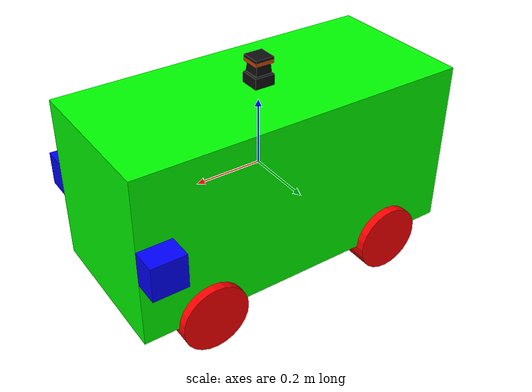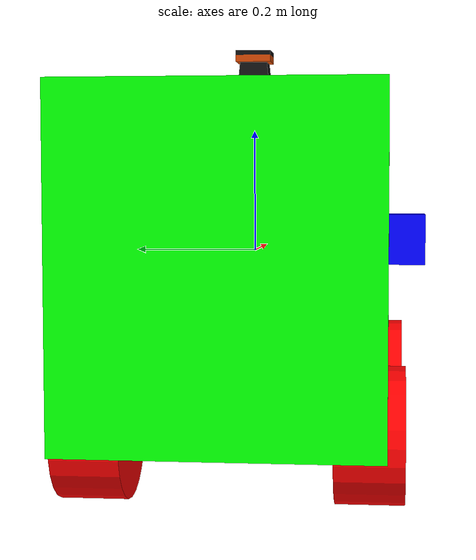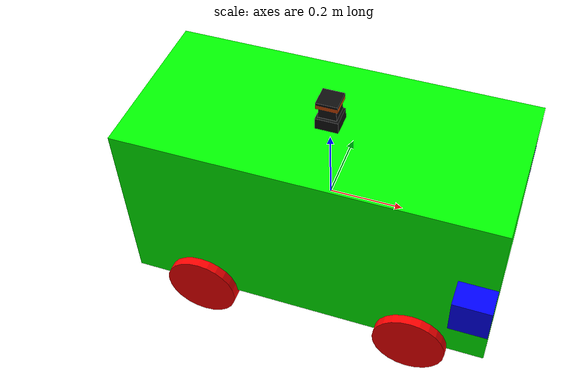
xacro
<?xml version="1.0"?>
<robot xmlns:xacro="http://www.ros.org/wiki/xacro" name="SweepBOT">

  <xacro:include filename="$(find sweep_bot)/urdf/sensors/camera.xacro"/>
  <xacro:include filename="$(find sweep_bot)/urdf/actuators/wheels.xacro"/>
  <xacro:include filename="$(find sweep_bot)/urdf/sensors/MultiCamera.xacro"/>
  <xacro:include filename="$(find sweep_bot)/urdf/sensors/laser.xacro"/>
  <xacro:include filename="$(find hector_sensors_description)/urdf/hokuyo_utm30lx.urdf.xacro"/>

  <!-- body -->
  <xacro:property name="chasis_length" value="1.0"/>
  <xacro:property name="chasis_width" value="0.45"/>
  <xacro:property name="chasis_heigth" value="0.5"/>
  <xacro:property name="chasis_mass" value="15.0"/>
  <xacro:property name="ixx" value="${(1/12 * chasis_mass) * ((chasis_width * chasis_width) + (chasis_length * chasis_length))}"/>
  <xacro:property name="iyy" value="${(1/12 * chasis_mass) * ((chasis_heigth * chasis_heigth) + (chasis_length * chasis_length))}"/>
  <xacro:property name="izz" value="${(1/12 * chasis_mass) * ((chasis_heigth * chasis_heigth) + (chasis_width * chasis_width))}"/>

  <link name="chasis_footprint"/>
  <joint name="chasis_footprint_joint" type="fixed">
    <parent link="chasis_footprint"/>
    <child link="chasis"/>
    <origin xyz="0.0 0.0 0.0" rpy="0.0 0.0 0.0"/>
  </joint>

  <link name="chasis">
    <inertial>
      <origin xyz="0.0 0.0 0.0" rpy="0.0 1.57 0.0"/>
      <mass value="${chasis_mass}"/>
      <inertia ixx="${ixx}" ixy="0.0" ixz="0.0" iyy="${iyy}" iyz="0.0" izz="${izz}"/>
    </inertial>
    <visual name="">
      <origin xyz="0.0 0.0 0.0" rpy="0.0 0.0 0.0"/>
      <geometry>
        <box size="${chasis_length} ${chasis_width} ${chasis_heigth}"/>
      </geometry>
      <material name="">
        <color rgba="0.0 1.0 0.0 1.0"/>
      </material>
    </visual>
    <collision>
      <origin xyz="0.0 0.0 0.0" rpy="0.0 0.0 0.0"/>
      <geometry>
        <box size="${chasis_length} ${chasis_width} ${chasis_heigth}"/>
      </geometry>
    </collision>
  </link>
  <gazebo reference='chasis'>
    <material>Gazebo/Orange</material>
  </gazebo>

  <!-- wheels -->
  <xacro:wheel side="left" position="fore" flip='1' alt='1'/>
  <xacro:wheel side="right" position="fore" flip='-1' alt='1'/>
  <xacro:wheel side="left" position="aft" flip='1' alt='-1'/>
  <xacro:wheel side="right" position="aft" flip='-1' alt='-1'/>

  <!-- HOKUYO as RPLIDAR -->
  <xacro:hokuyo_utm30lx name="hokuyo_laser" parent="chasis" ros_topic="hokuyo_scan" update_rate="40" ray_count="1040" min_angle="130" max_angle="-130">
    <origin xyz="0 0 0.3" rpy="0 0 0" />
  </xacro:hokuyo_utm30lx>

  <!-- MULTI-CAMERA -->
  <xacro:sweeper_cams/>

  <!-- LASERS -->

  <!-- SKIP STEERING -->
  <gazebo>
    <plugin name="skid_steer_drive_controller" filename="libgazebo_ros_skid_steer_drive.so">
      <updateRate>100.0</updateRate>
      <robotNamespace>/</robotNamespace>
      <leftFrontJoint>body_wheel_left_fore_joint</leftFrontJoint>
      <rightFrontJoint>body_wheel_right_fore_joint</rightFrontJoint>
      <leftRearJoint>body_wheel_left_aft_joint</leftRearJoint>
      <rightRearJoint>body_wheel_right_aft_joint</rightRearJoint>
      <wheelSeparation>0.5</wheelSeparation>
      <wheelDiameter>0.2</wheelDiameter>
      <robotBaseFrame>chasis_footprint</robotBaseFrame>
      <torque>20</torque>
      <topicName>cmd_vel</topicName>
      <broadcastTF>true</broadcastTF>

      <commandTopic> cmd_vel </commandTopic>
      <odometryTopic> odom </odometryTopic>
      <odometryFrame> odom </odometryFrame>
      <covariance_x> 0.000100 </covariance_x>
      <covariance_y> 0.000100 </covariance_y>
      <covariance_yaw> 0.010000 </covariance_yaw>
    </plugin>
  </gazebo>

</robot>

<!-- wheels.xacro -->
<robot xmlns:xacro="http://www.ros.org/wiki/xacro" name="robot_name">

  <!-- WHEELS -->
  <xacro:property name="wheel_radius" value="0.1"/>
  <xacro:property name="wheel_length" value="0.1"/>
  <xacro:property name="wheel_rpy" value="1.57075 0 0"/>

  <xacro:macro name="wheel" params="side position flip alt">
    <xacro:property name="wheel_xyz" value="${alt * 0.3} ${flip * 0.2} -0.25"/>

    <link name="wheel_${side}_${position}">
      <inertial>
        <mass value="3.0"/>
        <inertia ixx="1.0" ixy="0.0" ixz="0.0" iyy="1.0" iyz="0.0" izz="1.0"/>
      </inertial>
      <visual name="">
        <origin xyz="0 0 0" rpy="${wheel_rpy}"/>
        <geometry>
          <cylinder radius="${wheel_radius}" length="${wheel_length}"/>
        </geometry>
        <material name="">
          <color rgba="1.0 0.0 0.0 1.0"/>
          <texture filename=""/>
        </material>
      </visual>
      <collision>
        <origin xyz="0 0 0" rpy="${wheel_rpy}"/>
        <geometry>
          <cylinder radius="${wheel_radius}" length="${wheel_length}"/>
        </geometry>
      </collision>
    </link>

    <gazebo reference='"wheel_${side}_${position}'>
      <material>Gazebo/Red</material>
    </gazebo>

    <joint name="body_wheel_${side}_${position}_joint" type="continuous">
      <parent link="chasis"/>
      <child link="wheel_${side}_${position}"/>
      <limit lower="0.0" upper="0.0" effort="0.0" velocity="0.0"/>
      <origin xyz="${alt * 0.3} ${flip * 0.2} -0.25" rpy="0.0 0.0 0.0"/>
      <axis xyz="0.0 1.0 0.0"/>
    </joint>
  </xacro:macro>

</robot>

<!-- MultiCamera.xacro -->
<robot xmlns:xacro="http://www.ros.org/wiki/xacro" name="robot_name">
    <xacro:macro name="sweeper_cams" params="">

        <gazebo reference="left_camera_frame">
            <sensor type="multicamera" name="stereo_camera">
                <update_rate>30.0</update_rate>
                <camera name="left_camera">
                    <horizontal_fov>1.3962634</horizontal_fov>
                    <image>
                        <width>800</width>
                        <height>800</height>
                        <format>R8G8B8</format>
                    </image>
                    <clip>
                        <near>0.02</near>
                        <far>300</far>
                    </clip>
                    <noise>
                        <type>gaussian</type>
                        <mean>0.0</mean>
                        <stddev>0.007</stddev>
                    </noise>
                </camera>
                <camera name="right_camera">
                    <pose>0 -0.07 0 0 0 0</pose>
                    <horizontal_fov>1.3962634</horizontal_fov>
                    <image>
                        <width>800</width>
                        <height>800</height>
                        <format>R8G8B8</format>
                    </image>
                    <clip>
                        <near>0.02</near>
                        <far>300</far>
                    </clip>
                    <noise>
                        <type>gaussian</type>
                        <mean>0.0</mean>
                        <stddev>0.007</stddev>
                    </noise>
                </camera>
                <plugin name="stereo_camera_controller" filename="libgazebo_ros_multicamera.so">
                    <alwaysOn>true</alwaysOn>
                    <updateRate>0.0</updateRate>
                    <cameraName>multisense_sl/camera</cameraName>
                    <imageTopicName>image_raw</imageTopicName>
                    <cameraInfoTopicName>camera_info</cameraInfoTopicName>
                    <frameName>right_camera</frameName>
                    <hackBaseline>0.07</hackBaseline>
                    <distortionK1>0.0</distortionK1>
                    <distortionK2>0.0</distortionK2>
                    <distortionK3>0.0</distortionK3>
                    <distortionT1>0.0</distortionT1>
                    <distortionT2>0.0</distortionT2>
                </plugin>
            </sensor>
        </gazebo>

        <link name="left_camera">
            <inertial>
                <origin xyz="0.0 0.0 0.0" rpy="0.0 0.0 0.0"/>
                <mass value="0.0"/>
                <inertia ixx="0.0" ixy="0.0" ixz="0.0" iyy="0.0" iyz="0.0" izz="0.0"/>
            </inertial>
            <visual name="">
                <origin xyz="0.0 0.0 0.0" rpy="0.0 0.0 0.0"/>
                <geometry>
                    <box size="0.1 0.1 0.1"/>
                </geometry>
                <material name="">
                    <color rgba="0.0 0.0 1.0 1.0"/>
                    <texture filename=""/>
                </material>
            </visual>
            <collision>
                <origin xyz="0.0 0.0 0.0" rpy="0.0 0.0 0.0"/>
                <geometry>
                    <box size="0.0 0.0 0.0"/>
                </geometry>
            </collision>
        </link>
        <joint name="left_camera_joint" type="fixed">
            <origin xyz="0.45 -${chasis_width / 1.82} 0.0" rpy="0.0 0.0 0.0"/>
            <parent link="chasis"/>
            <child link="left_camera"/>
        </joint>

        <link name="right_camera">
            <inertial>
                <origin xyz="0.0 0.0 0.0" rpy="0.0 0.0 0.0"/>
                <mass value="0.0"/>
                <inertia ixx="0.0" ixy="0.0" ixz="0.0" iyy="0.0" iyz="0.0" izz="0.0"/>
            </inertial>
            <visual name="">
                <origin xyz="0.0 0.0 0.0" rpy="0.0 0.0 0.0"/>
                <geometry>
                    <box size="0.1 0.1 0.1"/>
                </geometry>
                <material name="">
                    <color rgba="0.0 0.0 1.0 1.0"/>
                    <texture filename=""/>
                </material>
            </visual>
            <collision>
                <origin xyz="0.0 0.0 0.0" rpy="0.0 0.0 0.0"/>
                <geometry>
                    <box size="0.0 0.0 0.0"/>
                </geometry>
            </collision>
        </link>
        <joint name="right_camera_joint" type="fixed">
            <origin xyz="0.45 ${chasis_width / 1.82} 0.0" rpy="0.0 0.0 0.0"/>
            <parent link="chasis"/>
            <child link="right_camera"/>
        </joint>

    </xacro:macro>
</robot>

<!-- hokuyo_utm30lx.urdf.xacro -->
<robot xmlns:xacro="http://ros.org/wiki/xacro">
    <xacro:property name="M_PI" value="3.1415926535897931" />

    <xacro:macro name="hokuyo_utm30lx_model" params="name parent *origin">
      <joint name="${name}_joint" type="fixed">
        <xacro:insert_block name="origin" />
        <parent link="${parent}"/>
        <child link="${name}_frame"/>
      </joint>

      <link name="${name}_frame">
        <inertial>
          <mass value="0.270" />
          <origin xyz="0 0 0" rpy="0 0 0" />
          <inertia ixx="2.632e-4" ixy="0" ixz="0" iyy="2.632e-4" iyz="0" izz="1.62e-4" />
        </inertial>
        <visual>
          <origin xyz="0 0 0" rpy="0 0 0" />
          <geometry>
          <mesh filename="package://hector_sensors_description/meshes/hokuyo_utm30lx/hokuyo_utm_30lx$(optenv TEST_SELF_FILTER).dae"/>
        </geometry>
        </visual>
        <collision>
          <origin xyz="0.00 0 0.0" rpy="0 ${0.5 * M_PI} 0" />
          <geometry>
	    <cylinder length="0.079" radius="0.0735"/>
        </geometry>
        </collision>
      </link>
    </xacro:macro>

    <xacro:macro name="hokuyo_utm30lx" params="name parent *origin ros_topic update_rate ray_count min_angle max_angle">
      <xacro:hokuyo_utm30lx_model name="${name}" parent="${parent}">
        <xacro:insert_block name="origin" />
      </xacro:hokuyo_utm30lx_model>

      <gazebo reference="${name}_frame">
        <sensor type="ray" name="${name}">
          <always_on>true</always_on>
          <update_rate>${update_rate}</update_rate>
          <pose>0 0 0 0 0 0</pose>
          <visualize>false</visualize>
          <ray>
            <scan>
              <horizontal>
                <samples>${ray_count}</samples>
                <resolution>1</resolution>
                <min_angle>${min_angle * M_PI/180}</min_angle>
                <max_angle>${max_angle * M_PI/180}</max_angle>
              </horizontal>
            </scan>
            <range>
              <min>0.2</min>
              <max>30.0</max>
              <resolution>0.01</resolution>
            </range>
            <noise>
              <type>gaussian</type>
              <mean>0.0</mean>
              <stddev>0.004</stddev>
            </noise>
          </ray>
          <plugin name="gazebo_ros_${name}_controller" filename="libgazebo_ros_laser.so">
            <gaussianNoise>0.005</gaussianNoise>
            <hokuyoMinIntensity>2000</hokuyoMinIntensity>
            <alwaysOn>true</alwaysOn>
	    <robotNamespace>$(arg robot_name)/sensor/</robotNamespace>
            <updateRate>${update_rate}</updateRate>
            <topicName>${ros_topic}</topicName>
            <frameName>${name}_frame</frameName>
          </plugin>
        </sensor>
      </gazebo>
    </xacro:macro>

    <xacro:macro name="hokuyo_utm30lx_gpu" params="name parent *origin ros_topic update_rate ray_count min_angle max_angle">
      <xacro:hokuyo_utm30lx_model name="${name}" parent="${parent}">
        <xacro:insert_block name="origin" />
      </xacro:hokuyo_utm30lx_model>

      <gazebo reference="${name}_frame">
        <sensor type="gpu_ray" name="${name}">
          <update_rate>${update_rate}</update_rate>
          <pose>0 0 0 0 0 0</pose>
          <visualize>false</visualize>
          <ray>
            <scan>
              <horizontal>
                <samples>${ray_count}</samples>
                <resolution>1</resolution>
                <min_angle>${min_angle * M_PI/180}</min_angle>
                <max_angle>${max_angle * M_PI/180}</max_angle>
              </horizontal>
            </scan>
            <range>
              <min>0.2</min>
              <max>30.0</max>
              <resolution>0.01</resolution>
            </range>
            <noise>
              <type>gaussian</type>
              <mean>0.0</mean>
              <stddev>0.004</stddev>
            </noise>
          </ray>
          <plugin name="gazebo_ros_${name}_controller" filename="libgazebo_ros_gpu_laser.so">
            <topicName>${ros_topic}</topicName>
            <frameName>${name}_frame</frameName>
          </plugin>
        </sensor>
      </gazebo>
    </xacro:macro>
</robot>
